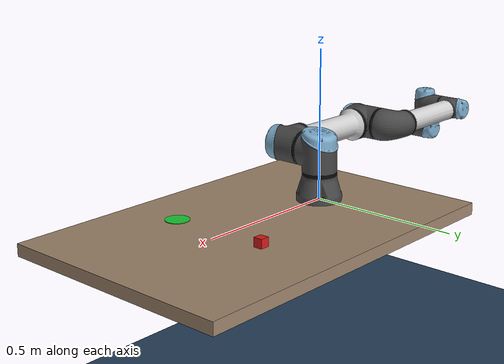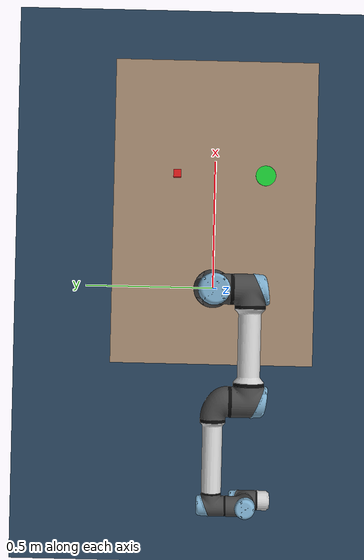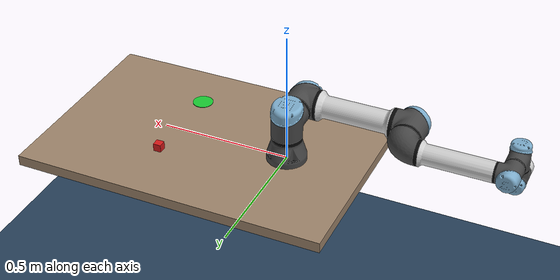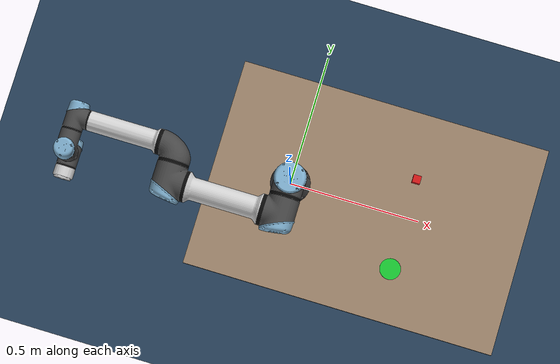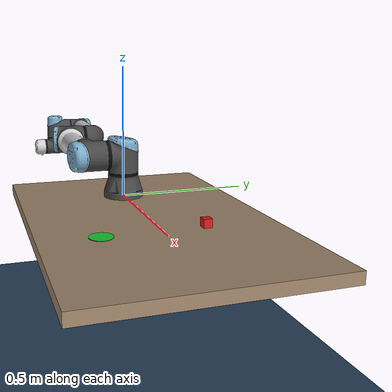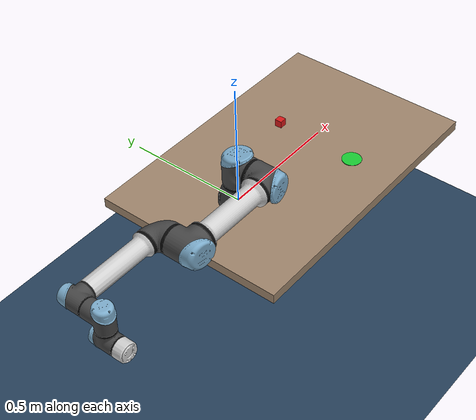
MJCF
<mujoco model="ur5e_2f85_pickplace">
  <compiler angle="radian"/>

  <option impratio="10" integrator="implicitfast" cone="elliptic"/>

  <size nkey="1"/>

  <visual>
    <global offwidth="1280" offheight="960"/>
    <quality shadowsize="2048"/>
    <headlight ambient="0.3 0.3 0.3" specular="0 0 0"/>
  </visual>

  <default>
    <default class="ur5e">
      <material shininess="0.25"/>
      <joint range="-6.28319 6.28319" armature="0.1" axis="0 1 0"/>
      <site size="0.001 0.005 0.005" group="4" rgba="0.5 0.5 0.5 0.3"/>
      <general ctrlrange="-6.2831 6.2831" forcerange="-150 150" biastype="affine" gainprm="2000" biasprm="0 -2000 -400"/>
      <default class="size3">
        <default class="size3_limited">
          <joint range="-3.1415 3.1415"/>
          <general ctrlrange="-3.1415 3.1415"/>
        </default>
      </default>
      <default class="size1">
        <general forcerange="-28 28" gainprm="500" biasprm="0 -500 -100"/>
      </default>
      <default class="visual">
        <geom type="mesh" contype="0" conaffinity="0" group="2"/>
      </default>
      <default class="collision">
        <geom type="capsule" group="3"/>
        <default class="eef_collision">
          <geom type="cylinder"/>
        </default>
      </default>
    </default>
    <default class="2f85/main">
      <default class="2f85/2f85">
        <mesh scale="0.001 0.001 0.001"/>
        <joint axis="1 0 0"/>
        <general biastype="affine"/>
        <default class="2f85/driver">
          <joint solreflimit="0.005" solimplimit="0.95 0.99" range="0 0.8" armature="0.005" damping="0.1"/>
        </default>
        <default class="2f85/follower">
          <joint solreflimit="0.005" solimplimit="0.95 0.99" range="-0.872664 0.872664" armature="0.001" pos="0 -0.018 0.0065"/>
        </default>
        <default class="2f85/spring_link">
          <joint stiffness="0.05" range="-0.296706 0.8" springref="2.62" armature="0.001" damping="0.00125"/>
        </default>
        <default class="2f85/coupler">
          <joint solreflimit="0.005" solimplimit="0.95 0.99" range="-1.57 0" armature="0.001"/>
        </default>
        <default class="2f85/visual">
          <geom type="mesh" contype="0" conaffinity="0" group="2"/>
        </default>
        <default class="2f85/collision">
          <geom type="mesh" group="3"/>
          <default class="2f85/pad_box1">
            <geom size="0.011 0.004 0.009375" type="box" priority="1" friction="0.7" solref="0.004" solimp="0.95 0.99" rgba="0.55 0.55 0.55 1"/>
          </default>
          <default class="2f85/pad_box2">
            <geom size="0.011 0.004 0.009375" type="box" priority="1" friction="0.6" solref="0.004" solimp="0.95 0.99" rgba="0.45 0.45 0.45 1"/>
          </default>
        </default>
      </default>
    </default>
  </default>

  <asset>
    <texture type="skybox" colorspace="auto" name="skybox" builtin="gradient" rgb1="0.3 0.5 0.7" rgb2="0 0 0" width="512" height="3072"/>
    <texture type="2d" colorspace="auto" name="floor" builtin="checker" mark="edge" rgb1="0.2 0.3 0.4" rgb2="0.1 0.2 0.3" markrgb="0.8 0.8 0.8" width="300" height="300"/>
    <material name="black" class="ur5e" rgba="0.033 0.033 0.033 1"/>
    <material name="jointgray" class="ur5e" rgba="0.278 0.278 0.278 1"/>
    <material name="linkgray" class="ur5e" rgba="0.82 0.82 0.82 1"/>
    <material name="urblue" class="ur5e" rgba="0.49 0.678 0.8 1"/>
    <material name="2f85/metal" rgba="0.58 0.58 0.58 1"/>
    <material name="2f85/silicone" rgba="0.1882 0.1882 0.1882 1"/>
    <material name="2f85/gray" rgba="0.4627 0.4627 0.4627 1"/>
    <material name="2f85/black" rgba="0.149 0.149 0.149 1"/>
    <material name="floor" texture="floor" texrepeat="5 5" texuniform="true" reflectance="0.1"/>
    <material name="table" rgba="0.62 0.52 0.42 1"/>
    <mesh name="base_0" file="../assets/universal_robots_ur5e/assets/base_0.obj"/>
    <mesh name="base_1" file="../assets/universal_robots_ur5e/assets/base_1.obj"/>
    <mesh name="shoulder_0" file="../assets/universal_robots_ur5e/assets/shoulder_0.obj"/>
    <mesh name="shoulder_1" file="../assets/universal_robots_ur5e/assets/shoulder_1.obj"/>
    <mesh name="shoulder_2" file="../assets/universal_robots_ur5e/assets/shoulder_2.obj"/>
    <mesh name="upperarm_0" file="../assets/universal_robots_ur5e/assets/upperarm_0.obj"/>
    <mesh name="upperarm_1" file="../assets/universal_robots_ur5e/assets/upperarm_1.obj"/>
    <mesh name="upperarm_2" file="../assets/universal_robots_ur5e/assets/upperarm_2.obj"/>
    <mesh name="upperarm_3" file="../assets/universal_robots_ur5e/assets/upperarm_3.obj"/>
    <mesh name="forearm_0" file="../assets/universal_robots_ur5e/assets/forearm_0.obj"/>
    <mesh name="forearm_1" file="../assets/universal_robots_ur5e/assets/forearm_1.obj"/>
    <mesh name="forearm_2" file="../assets/universal_robots_ur5e/assets/forearm_2.obj"/>
    <mesh name="forearm_3" file="../assets/universal_robots_ur5e/assets/forearm_3.obj"/>
    <mesh name="wrist1_0" file="../assets/universal_robots_ur5e/assets/wrist1_0.obj"/>
    <mesh name="wrist1_1" file="../assets/universal_robots_ur5e/assets/wrist1_1.obj"/>
    <mesh name="wrist1_2" file="../assets/universal_robots_ur5e/assets/wrist1_2.obj"/>
    <mesh name="wrist2_0" file="../assets/universal_robots_ur5e/assets/wrist2_0.obj"/>
    <mesh name="wrist2_1" file="../assets/universal_robots_ur5e/assets/wrist2_1.obj"/>
    <mesh name="wrist2_2" file="../assets/universal_robots_ur5e/assets/wrist2_2.obj"/>
    <mesh name="wrist3" file="../assets/universal_robots_ur5e/assets/wrist3.obj"/>
    <mesh name="2f85/base_mount" class="2f85/2f85" file="../assets/robotiq_2f85/assets/base_mount.stl"/>
    <mesh name="2f85/base" class="2f85/2f85" file="../assets/robotiq_2f85/assets/base.stl"/>
    <mesh name="2f85/driver" class="2f85/2f85" file="../assets/robotiq_2f85/assets/driver.stl"/>
    <mesh name="2f85/coupler" class="2f85/2f85" file="../assets/robotiq_2f85/assets/coupler.stl"/>
    <mesh name="2f85/follower" class="2f85/2f85" file="../assets/robotiq_2f85/assets/follower.stl"/>
    <mesh name="2f85/pad" class="2f85/2f85" file="../assets/robotiq_2f85/assets/pad.stl"/>
    <mesh name="2f85/silicone_pad" class="2f85/2f85" file="../assets/robotiq_2f85/assets/silicone_pad.stl"/>
    <mesh name="2f85/spring_link" class="2f85/2f85" file="../assets/robotiq_2f85/assets/spring_link.stl"/>
  </asset>

  <worldbody>
    <geom name="floor" size="0 0 0.05" pos="0 0 -0.75" type="plane" material="floor"/>
    <geom name="table" size="0.6 0.4 0.02" pos="0.3 0 -0.02" type="box" material="table"/>
    <camera name="front" quat="0.653281 0.270598 0.270598 0.653281" pos="1.1 0 0.7"/>
    <light name="key" pos="0.8 -0.6 1.8" dir="-0.357771 0.268328 -0.894427" diffuse="0.6 0.6 0.6"/>
    <light name="fill" pos="-0.4 0.6 1.6" dir="0.357771 -0.268328 -0.894427" diffuse="0.4 0.4 0.4"/>
    <body name="base" childclass="ur5e" quat="0 0 0 -1">
      <inertial pos="0 0 0" mass="4" diaginertia="0.00443333 0.00443333 0.0072"/>
      <geom class="visual" material="black" mesh="base_0"/>
      <geom class="visual" material="jointgray" mesh="base_1"/>
      <body name="shoulder_link" pos="0 0 0.163" gravcomp="1">
        <inertial pos="0 0 0" mass="3.7" diaginertia="0.0102675 0.0102675 0.00666"/>
        <joint name="shoulder_pan_joint" class="size3" actuatorgravcomp="true" axis="0 0 1"/>
        <geom class="visual" material="urblue" mesh="shoulder_0"/>
        <geom class="visual" material="black" mesh="shoulder_1"/>
        <geom class="visual" material="jointgray" mesh="shoulder_2"/>
        <geom class="collision" size="0.06 0.06" pos="0 0 -0.04"/>
        <body name="upper_arm_link" pos="0 0.138 0" quat="0.707107 0 0.707107 0" gravcomp="1">
          <inertial pos="0 0 0.2125" mass="8.393" diaginertia="0.133886 0.133886 0.0151074"/>
          <joint name="shoulder_lift_joint" class="size3" actuatorgravcomp="true"/>
          <geom class="visual" material="linkgray" mesh="upperarm_0"/>
          <geom class="visual" material="black" mesh="upperarm_1"/>
          <geom class="visual" material="jointgray" mesh="upperarm_2"/>
          <geom class="visual" material="urblue" mesh="upperarm_3"/>
          <geom class="collision" size="0.06 0.06" pos="0 -0.04 0" quat="0.707107 0.707107 0 0"/>
          <geom class="collision" size="0.05 0.2" pos="0 0 0.2"/>
          <body name="forearm_link" pos="0 -0.131 0.425" gravcomp="1">
            <inertial pos="0 0 0.196" mass="2.275" diaginertia="0.0311796 0.0311796 0.004095"/>
            <joint name="elbow_joint" class="size3_limited" actuatorgravcomp="true"/>
            <geom class="visual" material="urblue" mesh="forearm_0"/>
            <geom class="visual" material="linkgray" mesh="forearm_1"/>
            <geom class="visual" material="black" mesh="forearm_2"/>
            <geom class="visual" material="jointgray" mesh="forearm_3"/>
            <geom class="collision" size="0.055 0.06" pos="0 0.08 0" quat="0.707107 0.707107 0 0"/>
            <geom class="collision" size="0.038 0.19" pos="0 0 0.2"/>
            <body name="wrist_1_link" pos="0 0 0.392" quat="0.707107 0 0.707107 0" gravcomp="1">
              <inertial pos="0 0.127 0" mass="1.219" diaginertia="0.0025599 0.0025599 0.0021942"/>
              <joint name="wrist_1_joint" class="size1" actuatorgravcomp="true"/>
              <geom class="visual" material="black" mesh="wrist1_0"/>
              <geom class="visual" material="urblue" mesh="wrist1_1"/>
              <geom class="visual" material="jointgray" mesh="wrist1_2"/>
              <geom class="collision" size="0.04 0.07" pos="0 0.05 0" quat="0.707107 0.707107 0 0"/>
              <body name="wrist_2_link" pos="0 0.127 0" gravcomp="1">
                <inertial pos="0 0 0.1" mass="1.219" diaginertia="0.0025599 0.0025599 0.0021942"/>
                <joint name="wrist_2_joint" class="size1" actuatorgravcomp="true" axis="0 0 1"/>
                <geom class="visual" material="black" mesh="wrist2_0"/>
                <geom class="visual" material="urblue" mesh="wrist2_1"/>
                <geom class="visual" material="jointgray" mesh="wrist2_2"/>
                <geom class="collision" size="0.04 0.06" pos="0 0 0.04"/>
                <geom class="collision" size="0.04 0.04" pos="0 0.02 0.1" quat="0.707107 0.707107 0 0"/>
                <body name="wrist_3_link" pos="0 0 0.1" gravcomp="1">
                  <inertial pos="0 0.0771683 0" quat="0.707107 0 0 0.707107" mass="0.1889" diaginertia="0.000132134 9.90863e-05 9.90863e-05"/>
                  <joint name="wrist_3_joint" class="size1" actuatorgravcomp="true"/>
                  <geom class="visual" material="linkgray" mesh="wrist3"/>
                  <geom class="eef_collision" size="0.04 0.02" pos="0 0.08 0" quat="0.707107 0.707107 0 0"/>
                  <site name="attachment_site" quat="-0.707107 0.707107 0 0" pos="0 0.1 0"/>
                  <body name="2f85/base_mount" childclass="2f85/2f85" pos="0 0.107 0" quat="-0.707107 0.707107 0 0" gravcomp="1">
                    <geom class="2f85/visual" material="2f85/black" mesh="2f85/base_mount"/>
                    <geom class="2f85/collision" mesh="2f85/base_mount"/>
                    <body name="2f85/base" pos="0 0 0.0038" quat="0.707107 0 0 -0.707107" gravcomp="1">
                      <inertial pos="0 -2.70394e-05 0.0354675" quat="0.999999 -0.00152849 0 0" mass="0.777441" diaginertia="0.000260285 0.000225381 0.000152708"/>
                      <geom class="2f85/visual" material="2f85/black" mesh="2f85/base"/>
                      <geom class="2f85/collision" mesh="2f85/base"/>
                      <site name="2f85/pinch" group="5" pos="0 0 0.145" rgba="0.9 0.9 0.9 1"/>
                      <site name="tcp" size="0.004" group="4" pos="0 0 0.1439" rgba="1 1 0 0.6"/>
                      <camera name="wrist" quat="-0.140906 -0.692925 0.692925 0.140906" pos="-0.07 0 0.035" fovy="60"/>
                      <body name="2f85/right_driver" pos="0 0.0306011 0.054904" gravcomp="1">
                        <inertial pos="2.96931e-12 0.0177547 0.00107314" quat="0.681301 0.732003 0 0" mass="0.00899563" diaginertia="1.72352e-06 1.60906e-06 3.22006e-07"/>
                        <joint name="2f85/right_driver_joint" class="2f85/driver"/>
                        <geom class="2f85/visual" material="2f85/gray" mesh="2f85/driver"/>
                        <geom class="2f85/collision" mesh="2f85/driver"/>
                        <body name="2f85/right_coupler" pos="0 0.0315 -0.0041" gravcomp="1">
                          <inertial pos="0 0.00301209 0.0232175" quat="0.705636 -0.0455904 0.0455904 0.705636" mass="0.0140974" diaginertia="4.16206e-06 3.52216e-06 8.88131e-07"/>
                          <joint name="2f85/right_coupler_joint" class="2f85/coupler"/>
                          <geom class="2f85/visual" material="2f85/black" mesh="2f85/coupler"/>
                          <geom class="2f85/collision" mesh="2f85/coupler"/>
                        </body>
                      </body>
                      <body name="2f85/right_spring_link" pos="0 0.0132 0.0609" gravcomp="1">
                        <inertial pos="-8.65005e-09 0.0181624 0.0212658" quat="0.663403 -0.244737 0.244737 0.663403" mass="0.0221642" diaginertia="8.96853e-06 6.71733e-06 2.63931e-06"/>
                        <joint name="2f85/right_spring_link_joint" class="2f85/spring_link"/>
                        <geom class="2f85/visual" material="2f85/black" mesh="2f85/spring_link"/>
                        <geom class="2f85/collision" mesh="2f85/spring_link"/>
                        <body name="2f85/right_follower" pos="0 0.055 0.0375" gravcomp="1">
                          <inertial pos="0 -0.011046 0.0124786" quat="0.986437 0.164143 0 0" mass="0.0125222" diaginertia="2.67415e-06 2.4559e-06 6.02031e-07"/>
                          <joint name="2f85/right_follower_joint" class="2f85/follower"/>
                          <geom class="2f85/visual" material="2f85/black" mesh="2f85/follower"/>
                          <geom class="2f85/collision" mesh="2f85/follower"/>
                          <body name="2f85/right_pad" pos="0 -0.0189 0.01352" gravcomp="1">
                            <inertial pos="0 -0.0025 0.0185" quat="0.707107 0 0 0.707107" mass="0.0035" diaginertia="4.73958e-07 3.64583e-07 1.23958e-07"/>
                            <geom name="2f85/right_pad1" class="2f85/pad_box1" pos="0 -0.0026 0.028125" mass="0"/>
                            <geom name="2f85/right_pad2" class="2f85/pad_box2" pos="0 -0.0026 0.009375" mass="0"/>
                            <geom class="2f85/visual" mesh="2f85/pad"/>
                            <body name="2f85/right_silicone_pad" gravcomp="1">
                              <geom class="2f85/visual" material="2f85/black" mesh="2f85/silicone_pad"/>
                            </body>
                          </body>
                        </body>
                      </body>
                      <body name="2f85/left_driver" pos="0 -0.0306011 0.054904" quat="0 0 0 1" gravcomp="1">
                        <inertial pos="0 0.0177547 0.00107314" quat="0.681301 0.732003 0 0" mass="0.00899563" diaginertia="1.72352e-06 1.60906e-06 3.22006e-07"/>
                        <joint name="2f85/left_driver_joint" class="2f85/driver"/>
                        <geom class="2f85/visual" material="2f85/gray" mesh="2f85/driver"/>
                        <geom class="2f85/collision" mesh="2f85/driver"/>
                        <body name="2f85/left_coupler" pos="0 0.0315 -0.0041" gravcomp="1">
                          <inertial pos="0 0.00301209 0.0232175" quat="0.705636 -0.0455904 0.0455904 0.705636" mass="0.0140974" diaginertia="4.16206e-06 3.52216e-06 8.88131e-07"/>
                          <joint name="2f85/left_coupler_joint" class="2f85/coupler"/>
                          <geom class="2f85/visual" material="2f85/black" mesh="2f85/coupler"/>
                          <geom class="2f85/collision" mesh="2f85/coupler"/>
                        </body>
                      </body>
                      <body name="2f85/left_spring_link" pos="0 -0.0132 0.0609" quat="0 0 0 1" gravcomp="1">
                        <inertial pos="-8.65005e-09 0.0181624 0.0212658" quat="0.663403 -0.244737 0.244737 0.663403" mass="0.0221642" diaginertia="8.96853e-06 6.71733e-06 2.63931e-06"/>
                        <joint name="2f85/left_spring_link_joint" class="2f85/spring_link"/>
                        <geom class="2f85/visual" material="2f85/black" mesh="2f85/spring_link"/>
                        <geom class="2f85/collision" mesh="2f85/spring_link"/>
                        <body name="2f85/left_follower" pos="0 0.055 0.0375" gravcomp="1">
                          <inertial pos="0 -0.011046 0.0124786" quat="0.986437 0.164143 0 0" mass="0.0125222" diaginertia="2.67415e-06 2.4559e-06 6.02031e-07"/>
                          <joint name="2f85/left_follower_joint" class="2f85/follower"/>
                          <geom class="2f85/visual" material="2f85/black" mesh="2f85/follower"/>
                          <geom class="2f85/collision" mesh="2f85/follower"/>
                          <body name="2f85/left_pad" pos="0 -0.0189 0.01352" gravcomp="1">
                            <inertial pos="0 -0.0025 0.0185" quat="0.707107 0 0 0.707107" mass="0.0035" diaginertia="4.73958e-07 3.64583e-07 1.23958e-07"/>
                            <geom name="2f85/left_pad1" class="2f85/pad_box1" pos="0 -0.0026 0.028125" mass="0"/>
                            <geom name="2f85/left_pad2" class="2f85/pad_box2" pos="0 -0.0026 0.009375" mass="0"/>
                            <geom class="2f85/visual" mesh="2f85/pad"/>
                            <body name="2f85/left_silicone_pad" gravcomp="1">
                              <geom class="2f85/visual" material="2f85/black" mesh="2f85/silicone_pad"/>
                            </body>
                          </body>
                        </body>
                      </body>
                    </body>
                  </body>
                </body>
              </body>
            </body>
          </body>
        </body>
      </body>
    </body>
    <body name="cube" pos="0.45 0.15 0.015">
      <joint name="cube_joint" type="free"/>
      <geom name="cube" size="0.015 0.015 0.015" type="box" condim="4" priority="1" solref="0.01" solimp="0.95 0.99" rgba="0.85 0.1 0.1 1" mass="0.05"/>
    </body>
    <body name="target" pos="0.45 -0.2 0.001" mocap="true">
      <geom name="target" size="0.04 0.001" type="cylinder" contype="0" conaffinity="0" rgba="0.1 0.8 0.2 1"/>
    </body>
  </worldbody>

  <contact>
    <exclude body1="2f85/base" body2="2f85/right_driver"/>
    <exclude body1="2f85/base" body2="2f85/right_spring_link"/>
    <exclude body1="2f85/base" body2="2f85/left_driver"/>
    <exclude body1="2f85/base" body2="2f85/left_spring_link"/>
    <exclude body1="2f85/right_coupler" body2="2f85/right_follower"/>
    <exclude body1="2f85/left_coupler" body2="2f85/left_follower"/>
  </contact>

  <tendon>
    <fixed name="2f85/split">
      <joint joint="2f85/right_driver_joint" coef="0.5"/>
      <joint joint="2f85/left_driver_joint" coef="0.5"/>
    </fixed>
  </tendon>

  <equality>
    <connect body1="2f85/right_follower" body2="2f85/right_coupler" anchor="0 0 0" solref="0.005" solimp="0.95 0.99"/>
    <connect body1="2f85/left_follower" body2="2f85/left_coupler" anchor="0 0 0" solref="0.005" solimp="0.95 0.99"/>
    <joint joint1="2f85/right_driver_joint" joint2="2f85/left_driver_joint" solref="0.005" solimp="0.95 0.99"/>
  </equality>

  <actuator>
    <general name="shoulder_pan" class="size3" joint="shoulder_pan_joint"/>
    <general name="shoulder_lift" class="size3" joint="shoulder_lift_joint"/>
    <general name="elbow" class="size3_limited" joint="elbow_joint"/>
    <general name="wrist_1" class="size1" joint="wrist_1_joint"/>
    <general name="wrist_2" class="size1" joint="wrist_2_joint"/>
    <general name="wrist_3" class="size1" joint="wrist_3_joint"/>
    <general name="2f85/fingers_actuator" class="2f85/2f85" tendon="2f85/split" ctrlrange="0 255" forcerange="-5 5" gainprm="0.313725" biasprm="0 -100 -10"/>
  </actuator>

  <keyframe>
    <key name="home" qpos="3.14159 -1.5708 1.5708 -1.5708 -1.5708 0 0 0 0 0 0 0 0 0 0.45 0.15 0.015 1 0 0 0" ctrl="3.14159 -1.5708 1.5708 -1.5708 -1.5708 0 0"/>
  </keyframe>
</mujoco>
